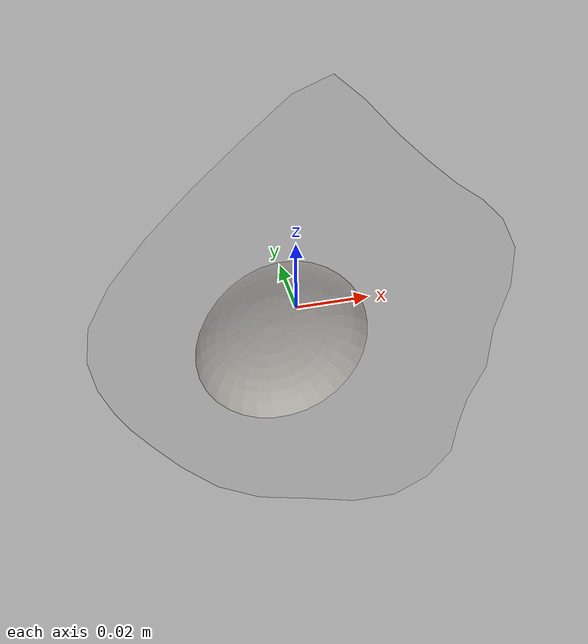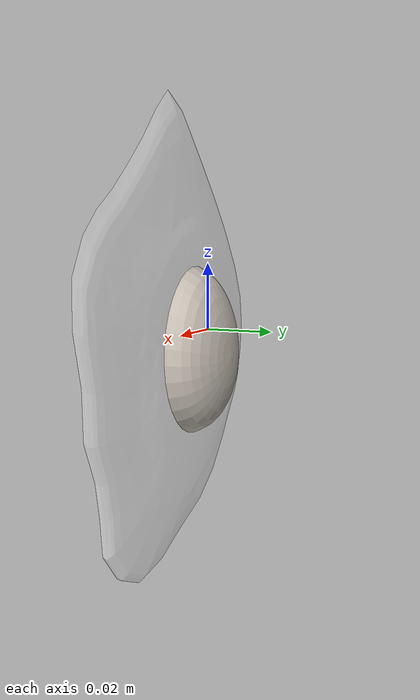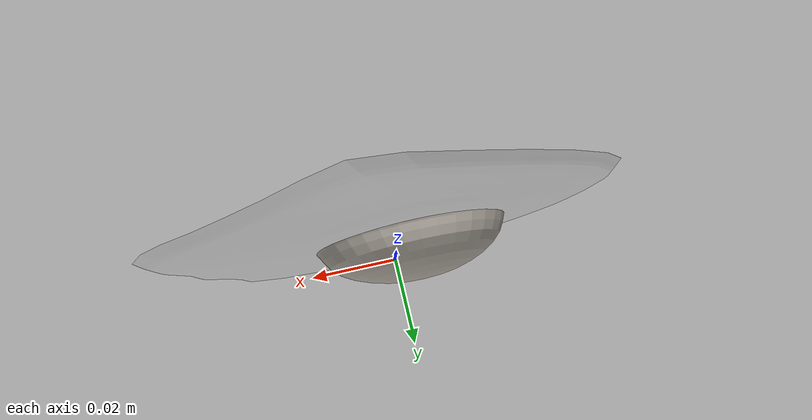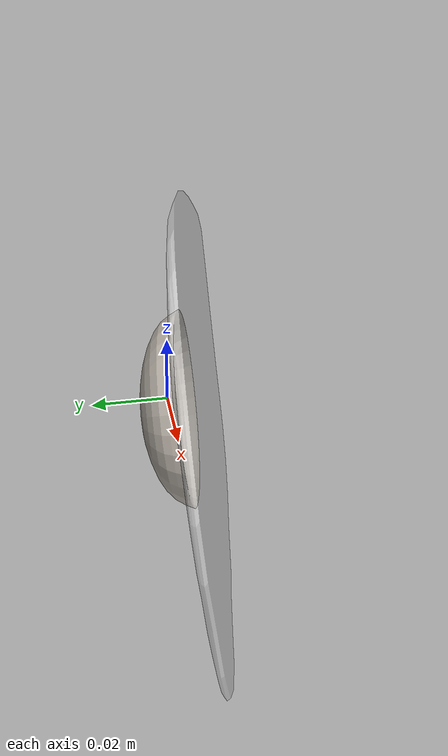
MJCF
<mujoco model="Egg_Cracked_20">
  <compiler autolimits="true" boundmass="0.01" angle="radian"/>
  <default>
    <default class="/">
      <default class="__VISUAL_MJT__">
        <geom contype="0" conaffinity="0" group="0"/>
      </default>
      <default class="__STRUCTURAL_MJT__">
        <geom contype="8" conaffinity="15" group="4" friction="0.90000000000000002 0.90000000000000002 0.001" solref="0.025000000000000001 1" solimp="0.998 0.998 0.001"/>
      </default>
      <default class="__DYNAMIC_MJT__">
        <geom contype="1" conaffinity="15" group="4" friction="0.90000000000000002 0.90000000000000002 0.001" solref="0.025000000000000001 1" solimp="0.998 0.998 0.001"/>
      </default>
    </default>
  </default>
  <asset>
    <texture name="Fried_Egg_White_Uncooked_Mat" type="2d" file="Fried_Egg_AlbedoTransparency.png"/>
    <material name="material_Fried_Egg_White_Uncooked_Mat" class="/" texture="Fried_Egg_White_Uncooked_Mat" specular="0.5" shininess="0.5" rgba="1 1 1 0.5"/>
    <texture name="Fried_Egg_Yolk_Mat" type="2d" file="Fried_Egg_AlbedoTransparency.png"/>
    <material name="material_Fried_Egg_Yolk_Mat" class="/" texture="Fried_Egg_Yolk_Mat" specular="0.5" shininess="0.5" rgba="1 1 1 1"/>
    <mesh name="Egg_Cracked_20_fried_egg_19_0" class="/" file="Egg_Cracked_20_fried_egg_19/Egg_Cracked_20_fried_egg_19_0.obj" scale="1 1 1"/>
    <mesh name="Egg_Cracked_20_fried_egg_19_1" class="/" file="Egg_Cracked_20_fried_egg_19/Egg_Cracked_20_fried_egg_19_1.obj" scale="1 1 1"/>
  </asset>
  <worldbody>
    <body name="Egg_Cracked_20">
      <joint name="Egg_Cracked_20_free" class="/" type="free" pos="0 0 0" axis="0 0 1" stiffness="0" range="0 0" armature="0" damping="0.10000000000000001" frictionloss="0"/>
      <body name="Egg_Cracked_20_fried_egg_19" pos="9.0000000000000006e-05 -0.01023 0.0080199999999999994" quat="1 0 0 0">
        <geom name="Egg_Cracked_20_fried_egg_19_0" class="__VISUAL_MJT__" type="mesh" material="material_Fried_Egg_White_Uncooked_Mat" shellinertia="false" mesh="Egg_Cracked_20_fried_egg_19_0"/>
        <geom name="Egg_Cracked_20_fried_egg_19_1" class="__VISUAL_MJT__" type="mesh" material="material_Fried_Egg_Yolk_Mat" shellinertia="false" mesh="Egg_Cracked_20_fried_egg_19_1"/>
        <geom name="Egg_Cracked_20_PrimitiveCollider_0" class="__DYNAMIC_MJT__" type="box" size="0.057892974466085434 0.010231256484985352 0.071426913142204285" rgba="0 1 0 1" pos="8.791312575340271e-05 0.010231256484985352 -0.0080167502164840698" quat="1 0 0 0"/>
      </body>
    </body>
  </worldbody>
</mujoco>
